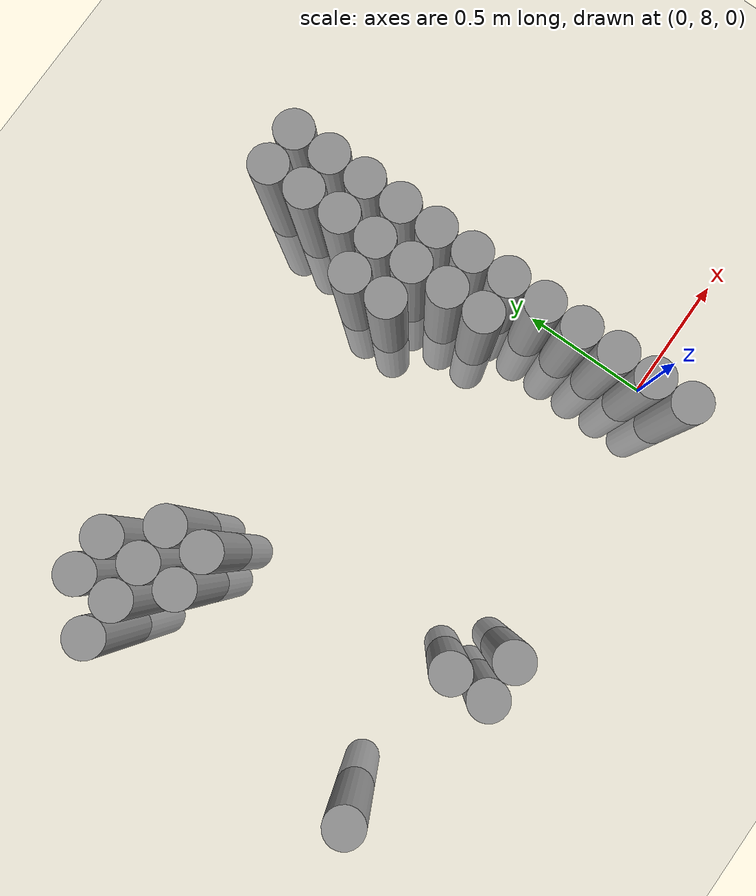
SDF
<sdf version="1.6">
 <world name="default">
  <model name="ground_plane">
   <static>1</static>
   <link name="link">
    <collision name="collision">
     <geometry><plane><normal>0 0 1</normal><size>100 100</size></plane></geometry>
     <surface><friction><ode><mu>100</mu><mu2>50</mu2></ode></friction></surface>
    </collision>
    <visual name="visual">
     <cast_shadows>0</cast_shadows>
     <geometry><plane><normal>0 0 1</normal><size>100 100</size></plane></geometry>
     <material>
      <script><uri>file://media/materials/scripts/gazebo.material</uri><name>Gazebo/Grey</name></script>
     </material>
    </visual>
   </link>
  </model>
  <model name="unit_cylinder_173">
   <pose>-1.875000 8.025000 0.000000 0.000000 0.000000 0.000000</pose>
   <link name="link">
    <inertial>
     <mass>1</mass>
     <inertia><ixx>0.145833</ixx><ixy>0</ixy><ixz>0</ixz><iyy>0.145833</iyy><iyz>0</iyz><izz>0.125</izz></inertia>
    </inertial>
    <collision name="collision">
     <geometry><cylinder><radius>0.075000</radius><length>1</length></cylinder></geometry>
    </collision>
    <visual name="visual">
     <geometry><cylinder><radius>0.075000</radius><length>1</length></cylinder></geometry>
     <material>
      <script><name>Gazebo/Grey</name><uri>file://media/materials/scripts/gazebo.material</uri></script>
     </material>
    </visual>
   </link>
  </model>
  <model name="unit_cylinder_174">
   <pose>-1.875000 9.075000 0.000000 0.000000 0.000000 0.000000</pose>
   <link name="link">
    <inertial>
     <mass>1</mass>
     <inertia><ixx>0.145833</ixx><ixy>0</ixy><ixz>0</ixz><iyy>0.145833</iyy><iyz>0</iyz><izz>0.125</izz></inertia>
    </inertial>
    <collision name="collision">
     <geometry><cylinder><radius>0.075000</radius><length>1</length></cylinder></geometry>
    </collision>
    <visual name="visual">
     <geometry><cylinder><radius>0.075000</radius><length>1</length></cylinder></geometry>
     <material>
      <script><name>Gazebo/Grey</name><uri>file://media/materials/scripts/gazebo.material</uri></script>
     </material>
    </visual>
   </link>
  </model>
  <model name="unit_cylinder_178">
   <pose>-1.725000 9.075000 0.000000 0.000000 0.000000 0.000000</pose>
   <link name="link">
    <inertial>
     <mass>1</mass>
     <inertia><ixx>0.145833</ixx><ixy>0</ixy><ixz>0</ixz><iyy>0.145833</iyy><iyz>0</iyz><izz>0.125</izz></inertia>
    </inertial>
    <collision name="collision">
     <geometry><cylinder><radius>0.075000</radius><length>1</length></cylinder></geometry>
    </collision>
    <visual name="visual">
     <geometry><cylinder><radius>0.075000</radius><length>1</length></cylinder></geometry>
     <material>
      <script><name>Gazebo/Grey</name><uri>file://media/materials/scripts/gazebo.material</uri></script>
     </material>
    </visual>
   </link>
  </model>
  <model name="unit_cylinder_179">
   <pose>-1.725000 9.225000 0.000000 0.000000 0.000000 0.000000</pose>
   <link name="link">
    <inertial>
     <mass>1</mass>
     <inertia><ixx>0.145833</ixx><ixy>0</ixy><ixz>0</ixz><iyy>0.145833</iyy><iyz>0</iyz><izz>0.125</izz></inertia>
    </inertial>
    <collision name="collision">
     <geometry><cylinder><radius>0.075000</radius><length>1</length></cylinder></geometry>
    </collision>
    <visual name="visual">
     <geometry><cylinder><radius>0.075000</radius><length>1</length></cylinder></geometry>
     <material>
      <script><name>Gazebo/Grey</name><uri>file://media/materials/scripts/gazebo.material</uri></script>
     </material>
    </visual>
   </link>
  </model>
  <model name="unit_cylinder_184">
   <pose>-1.575000 8.925000 0.000000 0.000000 0.000000 0.000000</pose>
   <link name="link">
    <inertial>
     <mass>1</mass>
     <inertia><ixx>0.145833</ixx><ixy>0</ixy><ixz>0</ixz><iyy>0.145833</iyy><iyz>0</iyz><izz>0.125</izz></inertia>
    </inertial>
    <collision name="collision">
     <geometry><cylinder><radius>0.075000</radius><length>1</length></cylinder></geometry>
    </collision>
    <visual name="visual">
     <geometry><cylinder><radius>0.075000</radius><length>1</length></cylinder></geometry>
     <material>
      <script><name>Gazebo/Grey</name><uri>file://media/materials/scripts/gazebo.material</uri></script>
     </material>
    </visual>
   </link>
  </model>
  <model name="unit_cylinder_185">
   <pose>-1.575000 9.075000 0.000000 0.000000 0.000000 0.000000</pose>
   <link name="link">
    <inertial>
     <mass>1</mass>
     <inertia><ixx>0.145833</ixx><ixy>0</ixy><ixz>0</ixz><iyy>0.145833</iyy><iyz>0</iyz><izz>0.125</izz></inertia>
    </inertial>
    <collision name="collision">
     <geometry><cylinder><radius>0.075000</radius><length>1</length></cylinder></geometry>
    </collision>
    <visual name="visual">
     <geometry><cylinder><radius>0.075000</radius><length>1</length></cylinder></geometry>
     <material>
      <script><name>Gazebo/Grey</name><uri>file://media/materials/scripts/gazebo.material</uri></script>
     </material>
    </visual>
   </link>
  </model>
  <model name="unit_cylinder_186">
   <pose>-1.575000 9.225000 0.000000 0.000000 0.000000 0.000000</pose>
   <link name="link">
    <inertial>
     <mass>1</mass>
     <inertia><ixx>0.145833</ixx><ixy>0</ixy><ixz>0</ixz><iyy>0.145833</iyy><iyz>0</iyz><izz>0.125</izz></inertia>
    </inertial>
    <collision name="collision">
     <geometry><cylinder><radius>0.075000</radius><length>1</length></cylinder></geometry>
    </collision>
    <visual name="visual">
     <geometry><cylinder><radius>0.075000</radius><length>1</length></cylinder></geometry>
     <material>
      <script><name>Gazebo/Grey</name><uri>file://media/materials/scripts/gazebo.material</uri></script>
     </material>
    </visual>
   </link>
  </model>
  <model name="unit_cylinder_190">
   <pose>-1.425000 8.925000 0.000000 0.000000 0.000000 0.000000</pose>
   <link name="link">
    <inertial>
     <mass>1</mass>
     <inertia><ixx>0.145833</ixx><ixy>0</ixy><ixz>0</ixz><iyy>0.145833</iyy><iyz>0</iyz><izz>0.125</izz></inertia>
    </inertial>
    <collision name="collision">
     <geometry><cylinder><radius>0.075000</radius><length>1</length></cylinder></geometry>
    </collision>
    <visual name="visual">
     <geometry><cylinder><radius>0.075000</radius><length>1</length></cylinder></geometry>
     <material>
      <script><name>Gazebo/Grey</name><uri>file://media/materials/scripts/gazebo.material</uri></script>
     </material>
    </visual>
   </link>
  </model>
  <model name="unit_cylinder_191">
   <pose>-1.425000 9.075000 0.000000 0.000000 0.000000 0.000000</pose>
   <link name="link">
    <inertial>
     <mass>1</mass>
     <inertia><ixx>0.145833</ixx><ixy>0</ixy><ixz>0</ixz><iyy>0.145833</iyy><iyz>0</iyz><izz>0.125</izz></inertia>
    </inertial>
    <collision name="collision">
     <geometry><cylinder><radius>0.075000</radius><length>1</length></cylinder></geometry>
    </collision>
    <visual name="visual">
     <geometry><cylinder><radius>0.075000</radius><length>1</length></cylinder></geometry>
     <material>
      <script><name>Gazebo/Grey</name><uri>file://media/materials/scripts/gazebo.material</uri></script>
     </material>
    </visual>
   </link>
  </model>
  <model name="unit_cylinder_193">
   <pose>-1.275000 7.875000 0.000000 0.000000 0.000000 0.000000</pose>
   <link name="link">
    <inertial>
     <mass>1</mass>
     <inertia><ixx>0.145833</ixx><ixy>0</ixy><ixz>0</ixz><iyy>0.145833</iyy><iyz>0</iyz><izz>0.125</izz></inertia>
    </inertial>
    <collision name="collision">
     <geometry><cylinder><radius>0.075000</radius><length>1</length></cylinder></geometry>
    </collision>
    <visual name="visual">
     <geometry><cylinder><radius>0.075000</radius><length>1</length></cylinder></geometry>
     <material>
      <script><name>Gazebo/Grey</name><uri>file://media/materials/scripts/gazebo.material</uri></script>
     </material>
    </visual>
   </link>
  </model>
  <model name="unit_cylinder_194">
   <pose>-1.275000 8.025000 0.000000 0.000000 0.000000 0.000000</pose>
   <link name="link">
    <inertial>
     <mass>1</mass>
     <inertia><ixx>0.145833</ixx><ixy>0</ixy><ixz>0</ixz><iyy>0.145833</iyy><iyz>0</iyz><izz>0.125</izz></inertia>
    </inertial>
    <collision name="collision">
     <geometry><cylinder><radius>0.075000</radius><length>1</length></cylinder></geometry>
    </collision>
    <visual name="visual">
     <geometry><cylinder><radius>0.075000</radius><length>1</length></cylinder></geometry>
     <material>
      <script><name>Gazebo/Grey</name><uri>file://media/materials/scripts/gazebo.material</uri></script>
     </material>
    </visual>
   </link>
  </model>
  <model name="unit_cylinder_196">
   <pose>-1.125000 7.875000 0.000000 0.000000 0.000000 0.000000</pose>
   <link name="link">
    <inertial>
     <mass>1</mass>
     <inertia><ixx>0.145833</ixx><ixy>0</ixy><ixz>0</ixz><iyy>0.145833</iyy><iyz>0</iyz><izz>0.125</izz></inertia>
    </inertial>
    <collision name="collision">
     <geometry><cylinder><radius>0.075000</radius><length>1</length></cylinder></geometry>
    </collision>
    <visual name="visual">
     <geometry><cylinder><radius>0.075000</radius><length>1</length></cylinder></geometry>
     <material>
      <script><name>Gazebo/Grey</name><uri>file://media/materials/scripts/gazebo.material</uri></script>
     </material>
    </visual>
   </link>
  </model>
  <model name="unit_cylinder_211">
   <pose>-0.375000 8.925000 0.000000 0.000000 0.000000 0.000000</pose>
   <link name="link">
    <inertial>
     <mass>1</mass>
     <inertia><ixx>0.145833</ixx><ixy>0</ixy><ixz>0</ixz><iyy>0.145833</iyy><iyz>0</iyz><izz>0.125</izz></inertia>
    </inertial>
    <collision name="collision">
     <geometry><cylinder><radius>0.075000</radius><length>1</length></cylinder></geometry>
    </collision>
    <visual name="visual">
     <geometry><cylinder><radius>0.075000</radius><length>1</length></cylinder></geometry>
     <material>
      <script><name>Gazebo/Grey</name><uri>file://media/materials/scripts/gazebo.material</uri></script>
     </material>
    </visual>
   </link>
  </model>
  <model name="unit_cylinder_212">
   <pose>-0.375000 9.075000 0.000000 0.000000 0.000000 0.000000</pose>
   <link name="link">
    <inertial>
     <mass>1</mass>
     <inertia><ixx>0.145833</ixx><ixy>0</ixy><ixz>0</ixz><iyy>0.145833</iyy><iyz>0</iyz><izz>0.125</izz></inertia>
    </inertial>
    <collision name="collision">
     <geometry><cylinder><radius>0.075000</radius><length>1</length></cylinder></geometry>
    </collision>
    <visual name="visual">
     <geometry><cylinder><radius>0.075000</radius><length>1</length></cylinder></geometry>
     <material>
      <script><name>Gazebo/Grey</name><uri>file://media/materials/scripts/gazebo.material</uri></script>
     </material>
    </visual>
   </link>
  </model>
  <model name="unit_cylinder_224">
   <pose>-0.225000 8.625000 0.000000 0.000000 0.000000 0.000000</pose>
   <link name="link">
    <inertial>
     <mass>1</mass>
     <inertia><ixx>0.145833</ixx><ixy>0</ixy><ixz>0</ixz><iyy>0.145833</iyy><iyz>0</iyz><izz>0.125</izz></inertia>
    </inertial>
    <collision name="collision">
     <geometry><cylinder><radius>0.075000</radius><length>1</length></cylinder></geometry>
    </collision>
    <visual name="visual">
     <geometry><cylinder><radius>0.075000</radius><length>1</length></cylinder></geometry>
     <material>
      <script><name>Gazebo/Grey</name><uri>file://media/materials/scripts/gazebo.material</uri></script>
     </material>
    </visual>
   </link>
  </model>
  <model name="unit_cylinder_225">
   <pose>-0.225000 8.775000 0.000000 0.000000 0.000000 0.000000</pose>
   <link name="link">
    <inertial>
     <mass>1</mass>
     <inertia><ixx>0.145833</ixx><ixy>0</ixy><ixz>0</ixz><iyy>0.145833</iyy><iyz>0</iyz><izz>0.125</izz></inertia>
    </inertial>
    <collision name="collision">
     <geometry><cylinder><radius>0.075000</radius><length>1</length></cylinder></geometry>
    </collision>
    <visual name="visual">
     <geometry><cylinder><radius>0.075000</radius><length>1</length></cylinder></geometry>
     <material>
      <script><name>Gazebo/Grey</name><uri>file://media/materials/scripts/gazebo.material</uri></script>
     </material>
    </visual>
   </link>
  </model>
  <model name="unit_cylinder_226">
   <pose>-0.225000 8.925000 0.000000 0.000000 0.000000 0.000000</pose>
   <link name="link">
    <inertial>
     <mass>1</mass>
     <inertia><ixx>0.145833</ixx><ixy>0</ixy><ixz>0</ixz><iyy>0.145833</iyy><iyz>0</iyz><izz>0.125</izz></inertia>
    </inertial>
    <collision name="collision">
     <geometry><cylinder><radius>0.075000</radius><length>1</length></cylinder></geometry>
    </collision>
    <visual name="visual">
     <geometry><cylinder><radius>0.075000</radius><length>1</length></cylinder></geometry>
     <material>
      <script><name>Gazebo/Grey</name><uri>file://media/materials/scripts/gazebo.material</uri></script>
     </material>
    </visual>
   </link>
  </model>
  <model name="unit_cylinder_227">
   <pose>-0.225000 9.075000 0.000000 0.000000 0.000000 0.000000</pose>
   <link name="link">
    <inertial>
     <mass>1</mass>
     <inertia><ixx>0.145833</ixx><ixy>0</ixy><ixz>0</ixz><iyy>0.145833</iyy><iyz>0</iyz><izz>0.125</izz></inertia>
    </inertial>
    <collision name="collision">
     <geometry><cylinder><radius>0.075000</radius><length>1</length></cylinder></geometry>
    </collision>
    <visual name="visual">
     <geometry><cylinder><radius>0.075000</radius><length>1</length></cylinder></geometry>
     <material>
      <script><name>Gazebo/Grey</name><uri>file://media/materials/scripts/gazebo.material</uri></script>
     </material>
    </visual>
   </link>
  </model>
  <model name="unit_cylinder_228">
   <pose>-0.225000 9.225000 0.000000 0.000000 0.000000 0.000000</pose>
   <link name="link">
    <inertial>
     <mass>1</mass>
     <inertia><ixx>0.145833</ixx><ixy>0</ixy><ixz>0</ixz><iyy>0.145833</iyy><iyz>0</iyz><izz>0.125</izz></inertia>
    </inertial>
    <collision name="collision">
     <geometry><cylinder><radius>0.075000</radius><length>1</length></cylinder></geometry>
    </collision>
    <visual name="visual">
     <geometry><cylinder><radius>0.075000</radius><length>1</length></cylinder></geometry>
     <material>
      <script><name>Gazebo/Grey</name><uri>file://media/materials/scripts/gazebo.material</uri></script>
     </material>
    </visual>
   </link>
  </model>
  <model name="unit_cylinder_229">
   <pose>-0.225000 9.375000 0.000000 0.000000 0.000000 0.000000</pose>
   <link name="link">
    <inertial>
     <mass>1</mass>
     <inertia><ixx>0.145833</ixx><ixy>0</ixy><ixz>0</ixz><iyy>0.145833</iyy><iyz>0</iyz><izz>0.125</izz></inertia>
    </inertial>
    <collision name="collision">
     <geometry><cylinder><radius>0.075000</radius><length>1</length></cylinder></geometry>
    </collision>
    <visual name="visual">
     <geometry><cylinder><radius>0.075000</radius><length>1</length></cylinder></geometry>
     <material>
      <script><name>Gazebo/Grey</name><uri>file://media/materials/scripts/gazebo.material</uri></script>
     </material>
    </visual>
   </link>
  </model>
  <model name="unit_cylinder_230">
   <pose>-0.225000 9.525000 0.000000 0.000000 0.000000 0.000000</pose>
   <link name="link">
    <inertial>
     <mass>1</mass>
     <inertia><ixx>0.145833</ixx><ixy>0</ixy><ixz>0</ixz><iyy>0.145833</iyy><iyz>0</iyz><izz>0.125</izz></inertia>
    </inertial>
    <collision name="collision">
     <geometry><cylinder><radius>0.075000</radius><length>1</length></cylinder></geometry>
    </collision>
    <visual name="visual">
     <geometry><cylinder><radius>0.075000</radius><length>1</length></cylinder></geometry>
     <material>
      <script><name>Gazebo/Grey</name><uri>file://media/materials/scripts/gazebo.material</uri></script>
     </material>
    </visual>
   </link>
  </model>
  <model name="unit_cylinder_249">
   <pose>-0.075000 7.875000 0.000000 0.000000 0.000000 0.000000</pose>
   <link name="link">
    <inertial>
     <mass>1</mass>
     <inertia><ixx>0.145833</ixx><ixy>0</ixy><ixz>0</ixz><iyy>0.145833</iyy><iyz>0</iyz><izz>0.125</izz></inertia>
    </inertial>
    <collision name="collision">
     <geometry><cylinder><radius>0.075000</radius><length>1</length></cylinder></geometry>
    </collision>
    <visual name="visual">
     <geometry><cylinder><radius>0.075000</radius><length>1</length></cylinder></geometry>
     <material>
      <script><name>Gazebo/Grey</name><uri>file://media/materials/scripts/gazebo.material</uri></script>
     </material>
    </visual>
   </link>
  </model>
  <model name="unit_cylinder_250">
   <pose>-0.075000 8.025000 0.000000 0.000000 0.000000 0.000000</pose>
   <link name="link">
    <inertial>
     <mass>1</mass>
     <inertia><ixx>0.145833</ixx><ixy>0</ixy><ixz>0</ixz><iyy>0.145833</iyy><iyz>0</iyz><izz>0.125</izz></inertia>
    </inertial>
    <collision name="collision">
     <geometry><cylinder><radius>0.075000</radius><length>1</length></cylinder></geometry>
    </collision>
    <visual name="visual">
     <geometry><cylinder><radius>0.075000</radius><length>1</length></cylinder></geometry>
     <material>
      <script><name>Gazebo/Grey</name><uri>file://media/materials/scripts/gazebo.material</uri></script>
     </material>
    </visual>
   </link>
  </model>
  <model name="unit_cylinder_251">
   <pose>-0.075000 8.175000 0.000000 0.000000 0.000000 0.000000</pose>
   <link name="link">
    <inertial>
     <mass>1</mass>
     <inertia><ixx>0.145833</ixx><ixy>0</ixy><ixz>0</ixz><iyy>0.145833</iyy><iyz>0</iyz><izz>0.125</izz></inertia>
    </inertial>
    <collision name="collision">
     <geometry><cylinder><radius>0.075000</radius><length>1</length></cylinder></geometry>
    </collision>
    <visual name="visual">
     <geometry><cylinder><radius>0.075000</radius><length>1</length></cylinder></geometry>
     <material>
      <script><name>Gazebo/Grey</name><uri>file://media/materials/scripts/gazebo.material</uri></script>
     </material>
    </visual>
   </link>
  </model>
  <model name="unit_cylinder_252">
   <pose>-0.075000 8.325000 0.000000 0.000000 0.000000 0.000000</pose>
   <link name="link">
    <inertial>
     <mass>1</mass>
     <inertia><ixx>0.145833</ixx><ixy>0</ixy><ixz>0</ixz><iyy>0.145833</iyy><iyz>0</iyz><izz>0.125</izz></inertia>
    </inertial>
    <collision name="collision">
     <geometry><cylinder><radius>0.075000</radius><length>1</length></cylinder></geometry>
    </collision>
    <visual name="visual">
     <geometry><cylinder><radius>0.075000</radius><length>1</length></cylinder></geometry>
     <material>
      <script><name>Gazebo/Grey</name><uri>file://media/materials/scripts/gazebo.material</uri></script>
     </material>
    </visual>
   </link>
  </model>
  <model name="unit_cylinder_253">
   <pose>-0.075000 8.475000 0.000000 0.000000 0.000000 0.000000</pose>
   <link name="link">
    <inertial>
     <mass>1</mass>
     <inertia><ixx>0.145833</ixx><ixy>0</ixy><ixz>0</ixz><iyy>0.145833</iyy><iyz>0</iyz><izz>0.125</izz></inertia>
    </inertial>
    <collision name="collision">
     <geometry><cylinder><radius>0.075000</radius><length>1</length></cylinder></geometry>
    </collision>
    <visual name="visual">
     <geometry><cylinder><radius>0.075000</radius><length>1</length></cylinder></geometry>
     <material>
      <script><name>Gazebo/Grey</name><uri>file://media/materials/scripts/gazebo.material</uri></script>
     </material>
    </visual>
   </link>
  </model>
  <model name="unit_cylinder_254">
   <pose>-0.075000 8.625000 0.000000 0.000000 0.000000 0.000000</pose>
   <link name="link">
    <inertial>
     <mass>1</mass>
     <inertia><ixx>0.145833</ixx><ixy>0</ixy><ixz>0</ixz><iyy>0.145833</iyy><iyz>0</iyz><izz>0.125</izz></inertia>
    </inertial>
    <collision name="collision">
     <geometry><cylinder><radius>0.075000</radius><length>1</length></cylinder></geometry>
    </collision>
    <visual name="visual">
     <geometry><cylinder><radius>0.075000</radius><length>1</length></cylinder></geometry>
     <material>
      <script><name>Gazebo/Grey</name><uri>file://media/materials/scripts/gazebo.material</uri></script>
     </material>
    </visual>
   </link>
  </model>
  <model name="unit_cylinder_255">
   <pose>-0.075000 8.775000 0.000000 0.000000 0.000000 0.000000</pose>
   <link name="link">
    <inertial>
     <mass>1</mass>
     <inertia><ixx>0.145833</ixx><ixy>0</ixy><ixz>0</ixz><iyy>0.145833</iyy><iyz>0</iyz><izz>0.125</izz></inertia>
    </inertial>
    <collision name="collision">
     <geometry><cylinder><radius>0.075000</radius><length>1</length></cylinder></geometry>
    </collision>
    <visual name="visual">
     <geometry><cylinder><radius>0.075000</radius><length>1</length></cylinder></geometry>
     <material>
      <script><name>Gazebo/Grey</name><uri>file://media/materials/scripts/gazebo.material</uri></script>
     </material>
    </visual>
   </link>
  </model>
  <model name="unit_cylinder_256">
   <pose>-0.075000 8.925000 0.000000 0.000000 0.000000 0.000000</pose>
   <link name="link">
    <inertial>
     <mass>1</mass>
     <inertia><ixx>0.145833</ixx><ixy>0</ixy><ixz>0</ixz><iyy>0.145833</iyy><iyz>0</iyz><izz>0.125</izz></inertia>
    </inertial>
    <collision name="collision">
     <geometry><cylinder><radius>0.075000</radius><length>1</length></cylinder></geometry>
    </collision>
    <visual name="visual">
     <geometry><cylinder><radius>0.075000</radius><length>1</length></cylinder></geometry>
     <material>
      <script><name>Gazebo/Grey</name><uri>file://media/materials/scripts/gazebo.material</uri></script>
     </material>
    </visual>
   </link>
  </model>
  <model name="unit_cylinder_257">
   <pose>-0.075000 9.075000 0.000000 0.000000 0.000000 0.000000</pose>
   <link name="link">
    <inertial>
     <mass>1</mass>
     <inertia><ixx>0.145833</ixx><ixy>0</ixy><ixz>0</ixz><iyy>0.145833</iyy><iyz>0</iyz><izz>0.125</izz></inertia>
    </inertial>
    <collision name="collision">
     <geometry><cylinder><radius>0.075000</radius><length>1</length></cylinder></geometry>
    </collision>
    <visual name="visual">
     <geometry><cylinder><radius>0.075000</radius><length>1</length></cylinder></geometry>
     <material>
      <script><name>Gazebo/Grey</name><uri>file://media/materials/scripts/gazebo.material</uri></script>
     </material>
    </visual>
   </link>
  </model>
  <model name="unit_cylinder_258">
   <pose>-0.075000 9.225000 0.000000 0.000000 0.000000 0.000000</pose>
   <link name="link">
    <inertial>
     <mass>1</mass>
     <inertia><ixx>0.145833</ixx><ixy>0</ixy><ixz>0</ixz><iyy>0.145833</iyy><iyz>0</iyz><izz>0.125</izz></inertia>
    </inertial>
    <collision name="collision">
     <geometry><cylinder><radius>0.075000</radius><length>1</length></cylinder></geometry>
    </collision>
    <visual name="visual">
     <geometry><cylinder><radius>0.075000</radius><length>1</length></cylinder></geometry>
     <material>
      <script><name>Gazebo/Grey</name><uri>file://media/materials/scripts/gazebo.material</uri></script>
     </material>
    </visual>
   </link>
  </model>
  <model name="unit_cylinder_259">
   <pose>-0.075000 9.375000 0.000000 0.000000 0.000000 0.000000</pose>
   <link name="link">
    <inertial>
     <mass>1</mass>
     <inertia><ixx>0.145833</ixx><ixy>0</ixy><ixz>0</ixz><iyy>0.145833</iyy><iyz>0</iyz><izz>0.125</izz></inertia>
    </inertial>
    <collision name="collision">
     <geometry><cylinder><radius>0.075000</radius><length>1</length></cylinder></geometry>
    </collision>
    <visual name="visual">
     <geometry><cylinder><radius>0.075000</radius><length>1</length></cylinder></geometry>
     <material>
      <script><name>Gazebo/Grey</name><uri>file://media/materials/scripts/gazebo.material</uri></script>
     </material>
    </visual>
   </link>
  </model>
  <model name="unit_cylinder_260">
   <pose>-0.075000 9.525000 0.000000 0.000000 0.000000 0.000000</pose>
   <link name="link">
    <inertial>
     <mass>1</mass>
     <inertia><ixx>0.145833</ixx><ixy>0</ixy><ixz>0</ixz><iyy>0.145833</iyy><iyz>0</iyz><izz>0.125</izz></inertia>
    </inertial>
    <collision name="collision">
     <geometry><cylinder><radius>0.075000</radius><length>1</length></cylinder></geometry>
    </collision>
    <visual name="visual">
     <geometry><cylinder><radius>0.075000</radius><length>1</length></cylinder></geometry>
     <material>
      <script><name>Gazebo/Grey</name><uri>file://media/materials/scripts/gazebo.material</uri></script>
     </material>
    </visual>
   </link>
  </model>
 </world>
</sdf>
